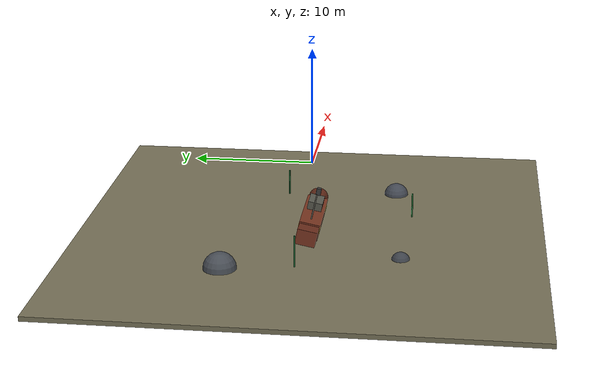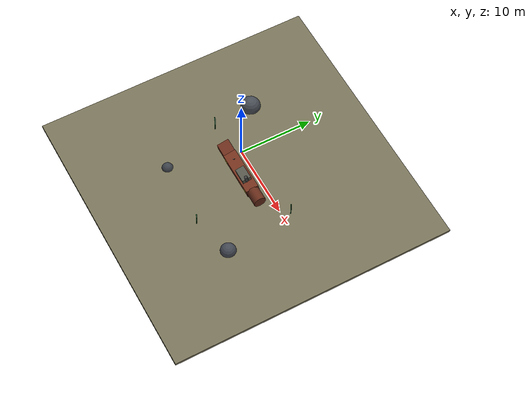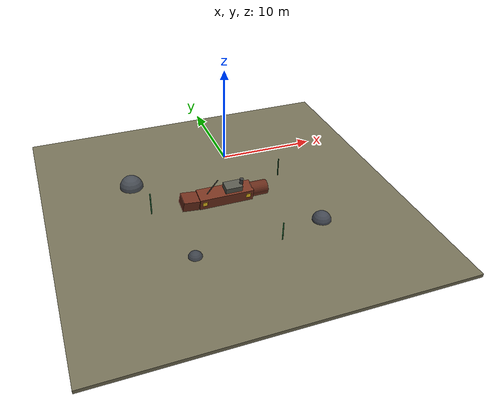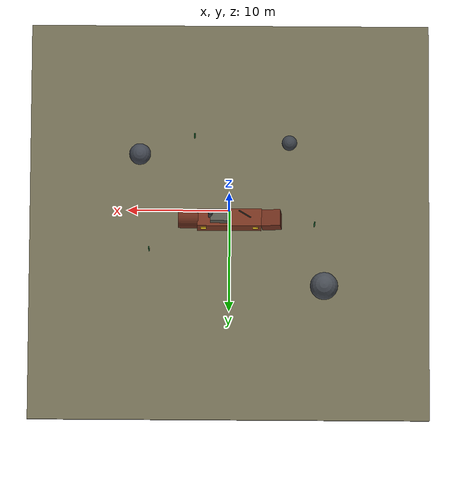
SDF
<?xml version="1.0"?>
<sdf version="1.6">
  <world name="wreck_inspection">
    <!-- 水下光照与雾效：蓝色环境光 + 线性水下雾，模拟浑浊海水 -->
    <scene>
      <ambient>0.32 0.46 0.58 1</ambient>
      <background>0.01 0.07 0.13 1</background>
      <shadows>true</shadows>
      <fog>
        <color>0.02 0.14 0.24 1</color>
        <type>linear</type>
        <density>0.022</density>
      </fog>
    </scene>

    <!-- 水下无重力（ROV 采用运动学位姿控制，不受重力影响） -->
    <gravity>0 0 0</gravity>
    <physics type="ode">
      <max_step_size>0.002</max_step_size>
      <real_time_update_rate>500</real_time_update_rate>
      <real_time_factor>1.0</real_time_factor>
    </physics>

    <light type="directional" name="underwater_sun">
      <cast_shadows>true</cast_shadows>
      <pose>0 0 12 0 0 0</pose>
      <diffuse>0.55 0.75 0.90 1</diffuse>
      <specular>0.10 0.20 0.30 1</specular>
      <attenuation>
        <range>60</range>
        <constant>0.9</constant>
        <linear>0.02</linear>
        <quadratic>0.0</quadratic>
      </attenuation>
      <direction>-0.25 0.20 -0.95</direction>
    </light>

    <!-- 第三人称观察相机：斜侧方俯视沉船与 ROV，用于采集仿真展示画面 -->
    <model name="scene_camera">
      <static>true</static>
      <pose>9.0 -8.5 -0.8 0 0.28 2.39</pose>
      <link name="link">
        <sensor name="camera" type="camera">
          <update_rate>20</update_rate>
          <camera>
            <horizontal_fov>1.10</horizontal_fov>
            <image>
              <width>1280</width>
              <height>720</height>
            </image>
            <clip>
              <near>0.1</near>
              <far>100</far>
            </clip>
          </camera>
          <plugin name="scene_camera_controller" filename="libgazebo_ros_camera.so">
            <ros>
              <namespace>/scene</namespace>
            </ros>
            <cameraName>camera</cameraName>
            <imageTopicName>image_raw</imageTopicName>
            <cameraInfoTopicName>camera_info</cameraInfoTopicName>
            <frameName>scene_camera_link</frameName>
          </plugin>
        </sensor>
      </link>
    </model>

    <!-- 海底沙地 -->
    <model name="seabed">
      <static>true</static>
      <link name="link">
        <pose>0 0 -6.2 0 0 0</pose>
        <visual name="sand">
          <geometry>
            <box><size>40 40 0.4</size></box>
          </geometry>
          <material>
            <ambient>0.36 0.36 0.28 1</ambient>
            <diffuse>0.46 0.44 0.34 1</diffuse>
            <specular>0.05 0.05 0.04 1</specular>
          </material>
        </visual>
        <collision name="collision">
          <geometry><box><size>40 40 0.4</size></box></geometry>
        </collision>
      </link>
    </model>

    <!-- 沉船：船体沿 X 轴横卧，绕 X 轴倾斜 0.2 rad（右舷上翘），部分埋入沙中 -->
    <model name="shipwreck">
      <static>true</static>
      <link name="hull">
        <pose>0 0 -5.05 0.20 0 0</pose>

        <!-- 主船体 -->
        <visual name="hull_body">
          <geometry><box><size>6.4 1.8 1.45</size></box></geometry>
          <material>
            <ambient>0.30 0.12 0.08 1</ambient>
            <diffuse>0.46 0.20 0.12 1</diffuse>
            <specular>0.08 0.06 0.05 1</specular>
            <emissive>0.06 0.02 0.01 1</emissive>
          </material>
        </visual>
        <collision name="hull_collision">
          <geometry><box><size>6.4 1.8 1.45</size></box></geometry>
        </collision>

        <!-- 船首（圆柱，绕 Y 轴旋转 90 度指向 +X） -->
        <visual name="bow">
          <pose>4.1 0 0 0 1.5708 0</pose>
          <geometry><cylinder><radius>0.85</radius><length>2.0</length></cylinder></geometry>
          <material>
            <ambient>0.26 0.10 0.07 1</ambient>
            <diffuse>0.40 0.17 0.10 1</diffuse>
            <specular>0.08 0.06 0.05 1</specular>
            <emissive>0.05 0.02 0.01 1</emissive>
          </material>
        </visual>

        <!-- 断裂的船尾段，与主船体之间留出裂缝 -->
        <visual name="stern">
          <pose>-4.2 0 0.05 0 0.12 0</pose>
          <geometry><box><size>1.9 1.7 1.3</size></box></geometry>
          <material>
            <ambient>0.28 0.11 0.07 1</ambient>
            <diffuse>0.43 0.18 0.11 1</diffuse>
            <specular>0.08 0.06 0.05 1</specular>
            <emissive>0.05 0.02 0.01 1</emissive>
          </material>
        </visual>

        <!-- 上层建筑（驾驶舱） -->
        <visual name="deckhouse">
          <pose>0.9 0 0.95 0 0 0</pose>
          <geometry><box><size>2.0 1.25 0.95</size></box></geometry>
          <material>
            <ambient>0.22 0.22 0.20 1</ambient>
            <diffuse>0.34 0.34 0.30 1</diffuse>
            <specular>0.10 0.10 0.10 1</specular>
          </material>
        </visual>

        <!-- 烟囱 -->
        <visual name="funnel">
          <pose>1.9 0 1.55 0 0 0</pose>
          <geometry><cylinder><radius>0.22</radius><length>1.0</length></cylinder></geometry>
          <material>
            <ambient>0.16 0.16 0.16 1</ambient>
            <diffuse>0.24 0.24 0.24 1</diffuse>
            <specular>0.10 0.10 0.10 1</specular>
          </material>
        </visual>

        <!-- 倾倒的桅杆 -->
        <visual name="mast">
          <pose>-1.6 0 1.55 0 0.55 0</pose>
          <geometry><cylinder><radius>0.06</radius><length>2.4</length></cylinder></geometry>
          <material>
            <ambient>0.18 0.17 0.15 1</ambient>
            <diffuse>0.26 0.25 0.22 1</diffuse>
            <specular>0.12 0.12 0.12 1</specular>
          </material>
        </visual>

        <!-- 四个高对比度结构特征标记板（自发光的黄色板，模拟反光标记），
             视觉检测节点通过颜色分割识别它们并估计距离 -->
        <visual name="marker_a_pos">
          <pose>2.6 0.915 0.05 0 0 0</pose>
          <geometry><box><size>0.55 0.03 0.55</size></box></geometry>
          <material>
            <ambient>0.90 0.72 0.10 1</ambient>
            <diffuse>0.98 0.80 0.12 1</diffuse>
            <specular>0.10 0.10 0.10 1</specular>
            <emissive>0.60 0.46 0.05 1</emissive>
          </material>
        </visual>
        <visual name="marker_a_neg">
          <pose>-2.6 0.915 0.05 0 0 0</pose>
          <geometry><box><size>0.55 0.03 0.55</size></box></geometry>
          <material>
            <ambient>0.90 0.72 0.10 1</ambient>
            <diffuse>0.98 0.80 0.12 1</diffuse>
            <specular>0.10 0.10 0.10 1</specular>
            <emissive>0.60 0.46 0.05 1</emissive>
          </material>
        </visual>
        <visual name="marker_b_pos">
          <pose>2.6 -0.915 0.05 0 0 0</pose>
          <geometry><box><size>0.55 0.03 0.55</size></box></geometry>
          <material>
            <ambient>0.90 0.72 0.10 1</ambient>
            <diffuse>0.98 0.80 0.12 1</diffuse>
            <specular>0.10 0.10 0.10 1</specular>
            <emissive>0.60 0.46 0.05 1</emissive>
          </material>
        </visual>
        <visual name="marker_b_neg">
          <pose>-2.6 -0.915 0.05 0 0 0</pose>
          <geometry><box><size>0.55 0.03 0.55</size></box></geometry>
          <material>
            <ambient>0.90 0.72 0.10 1</ambient>
            <diffuse>0.98 0.80 0.12 1</diffuse>
            <specular>0.10 0.10 0.10 1</specular>
            <emissive>0.60 0.46 0.05 1</emissive>
          </material>
        </visual>
      </link>
    </model>

    <!-- 环境礁石（避开 ROV 巡检椭圆轨迹） -->
    <model name="rock_0">
      <static>true</static>
      <pose>-9.5 6.5 -6.0 0 0 0</pose>
      <link name="link">
        <visual name="v">
          <geometry><sphere><radius>1.4</radius></sphere></geometry>
          <material><ambient>0.20 0.22 0.24 1</ambient><diffuse>0.28 0.30 0.33 1</diffuse></material>
        </visual>
      </link>
    </model>
    <model name="rock_1">
      <static>true</static>
      <pose>9.0 -6.8 -6.1 0 0 0</pose>
      <link name="link">
        <visual name="v">
          <geometry><sphere><radius>1.1</radius></sphere></geometry>
          <material><ambient>0.18 0.20 0.23 1</ambient><diffuse>0.26 0.28 0.32 1</diffuse></material>
        </visual>
      </link>
    </model>
    <model name="rock_2">
      <static>true</static>
      <pose>-6.0 -8.0 -6.2 0 0 0</pose>
      <link name="link">
        <visual name="v">
          <geometry><sphere><radius>0.8</radius></sphere></geometry>
          <material><ambient>0.16 0.18 0.20 1</ambient><diffuse>0.24 0.26 0.29 1</diffuse></material>
        </visual>
      </link>
    </model>

    <!-- 海草 -->
    <model name="kelp_0">
      <static>true</static>
      <pose>-8.5 0.5 -4.8 0 0 0</pose>
      <link name="link">
        <visual name="v">
          <geometry><cylinder><radius>0.07</radius><length>3.0</length></cylinder></geometry>
          <material><ambient>0.06 0.28 0.12 1</ambient><diffuse>0.08 0.36 0.16 1</diffuse></material>
        </visual>
      </link>
    </model>
    <model name="kelp_1">
      <static>true</static>
      <pose>8.0 3.0 -5.0 0 0 0</pose>
      <link name="link">
        <visual name="v">
          <geometry><cylinder><radius>0.06</radius><length>2.6</length></cylinder></geometry>
          <material><ambient>0.07 0.30 0.14 1</ambient><diffuse>0.10 0.40 0.18 1</diffuse></material>
        </visual>
      </link>
    </model>
    <model name="kelp_2">
      <static>true</static>
      <pose>3.5 -8.5 -5.2 0 0 0</pose>
      <link name="link">
        <visual name="v">
          <geometry><cylinder><radius>0.07</radius><length>2.8</length></cylinder></geometry>
          <material><ambient>0.06 0.28 0.12 1</ambient><diffuse>0.09 0.37 0.15 1</diffuse></material>
        </visual>
      </link>
    </model>

    <!-- Gazebo 实体状态服务，供巡检控制节点按运动学位姿驱动 ROV -->
    <plugin name="gazebo_ros_state" filename="libgazebo_ros_state.so">
      <ros>
        <namespace>/gazebo</namespace>
      </ros>
      <update_rate>30.0</update_rate>
    </plugin>
  </world>
</sdf>
